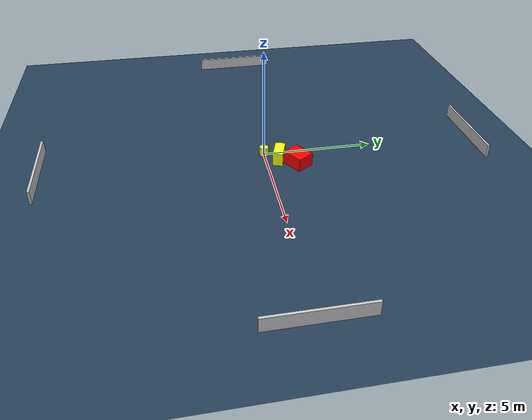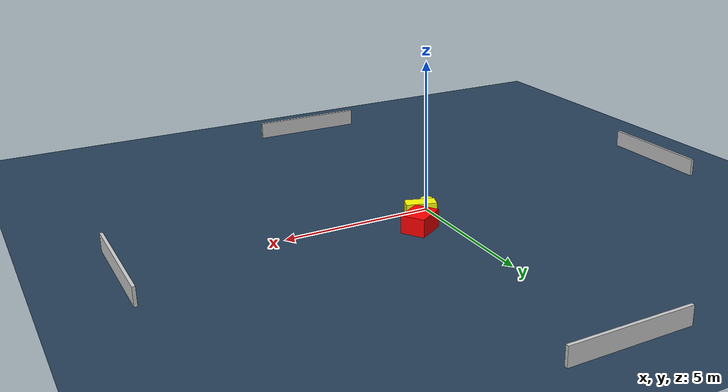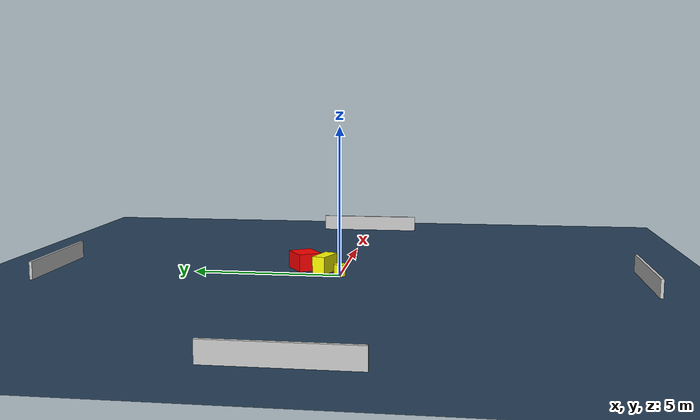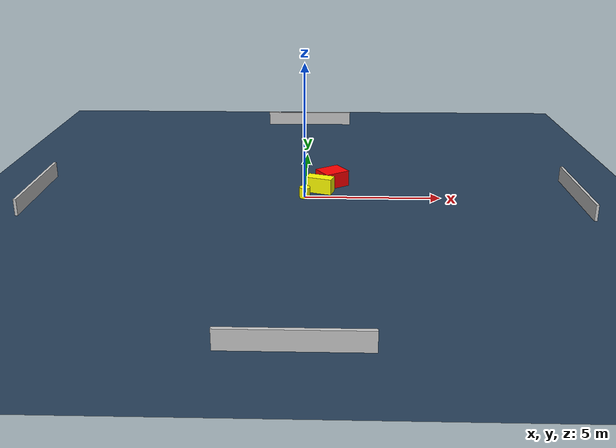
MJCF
<?xml version="1.0" ?>
<mujoco model="generated_environment">
  <option timestep="0.01" integrator="RK4" cone="elliptic"/>
  <default>
    <geom density="1"/>
  </default>
  <asset>
    <texture builtin="gradient" height="3072" name="skybox" rgb1="0.3 0.5 0.7" rgb2="0 0 0" type="skybox" width="512"/>
    <texture builtin="checker" height="300" name="groundplane" rgb1="0.2 0.3 0.4" rgb2="0.1 0.2 0.3" type="2d" width="300"/>
    <material name="groundplane" reflectance="0.2" texrepeat="5 5" texture="groundplane"/>
  </asset>
  <worldbody>
    <light dir="0 0 -1" directional="true" pos="0 0 1.5"/>
    <geom condim="3" friction="0.5 0.005 0.001" material="groundplane" name="floor" pos="0 0 0" size="0 0 0.05" type="plane"/>
    <body name="walls">
      <geom name="wall_1" condim="4" pos="-10.0 0.0 0.3" rgba="0.800000011920929 0.800000011920929 0.800000011920929 1.0" size="0.05 2.0 0.3" type="box"/>
      <geom name="wall_2" condim="4" pos="10.0 0.0 0.3" rgba="0.800000011920929 0.800000011920929 0.800000011920929 1.0" size="0.05 2.0 0.3" type="box"/>
      <geom name="wall_3" condim="4" pos="0.0 -10.0 0.3" rgba="0.800000011920929 0.800000011920929 0.800000011920929 1.0" size="2.0 0.05 0.3" type="box"/>
      <geom name="wall_4" condim="4" pos="0.0 10.0 0.3" rgba="0.800000011920929 0.800000011920929 0.800000011920929 1.0" size="2.0 0.05 0.3" type="box"/>
    </body>
    <body name="robot">
      <joint name="joint_x" type="slide" pos="0 0 0" axis="1 0 0"/>
      <joint name="joint_y" type="slide" pos="0 0 0" axis="0 1 0"/>
      <geom name="robot" type="cylinder" pos="0.0 0.0 0.2" size="0.2 0.2 0.0" mass="5.0" friction="1.0 0.005 0.0001" condim="4" rgba="1.0 1.0 0.0 1.0"/>
    </body>
    <body name="obstacle_1_movable">
      <geom name="obstacle_1_movable" condim="4" pos="0.5629239896082843 0.5868861370076243 0.3" euler="0 0 251.38872042695462" friction="0.0 0.005 0.001" rgba="1.0 1.0 0.0 1.0" size="0.22596407134967075 0.4983172068609544 0.3" type="box" mass="0.1"/>
      <joint type="free"/>
    </body>
    <body name="obstacle_2_static">
      <geom name="obstacle_2_static" condim="4" pos="1.0269629443860755 1.3566892843290743 0.3" euler="0 0 302.36112916890346" friction="0.0 0.005 0.001" rgba="1.0 0.0 0.0 1.0" size="0.41131844845121723 0.49703481307660496 0.3" type="box"/>
    </body>
  </worldbody>
  <actuator>
    <motor name="actuator_x" joint="joint_x" gear="1" ctrlrange="-1 1"/>
    <motor name="actuator_y" joint="joint_y" gear="1" ctrlrange="-1 1"/>
  </actuator>
</mujoco>
